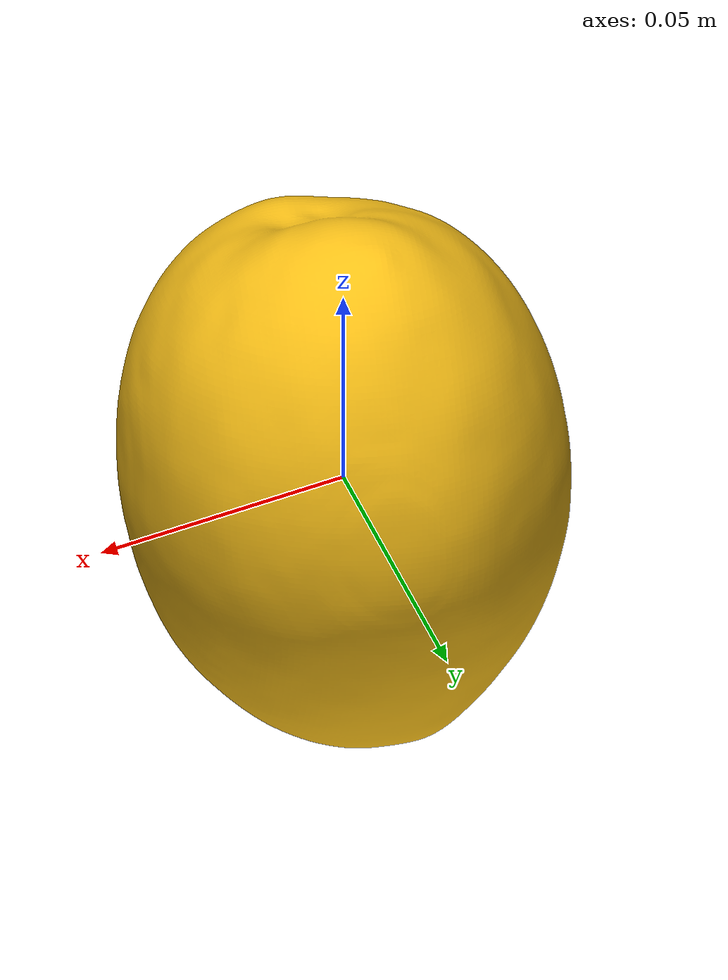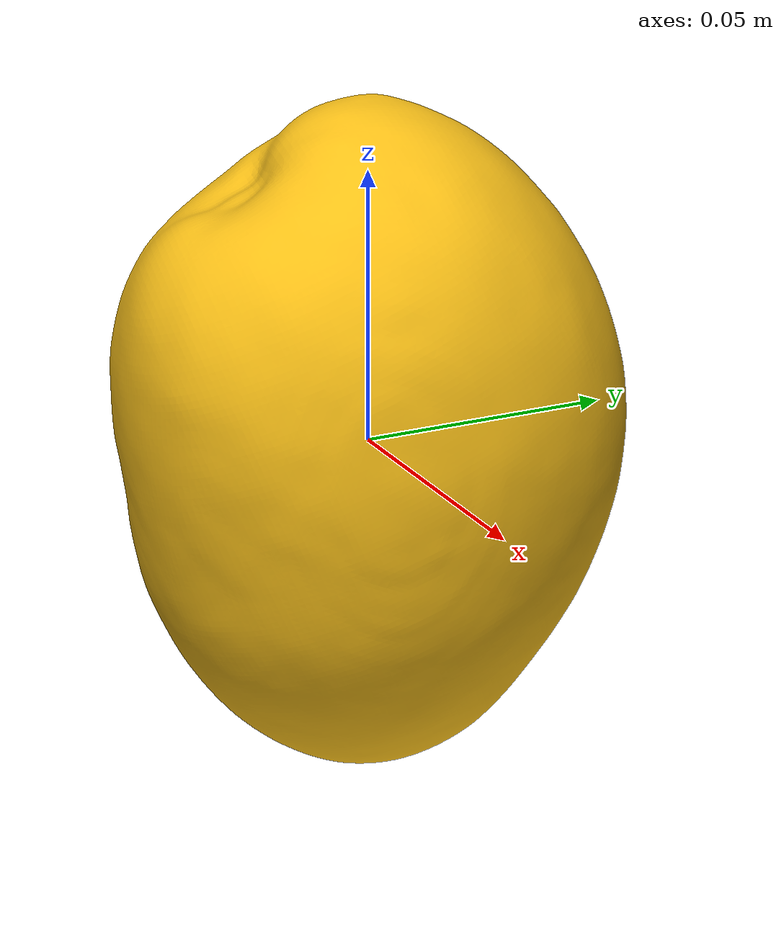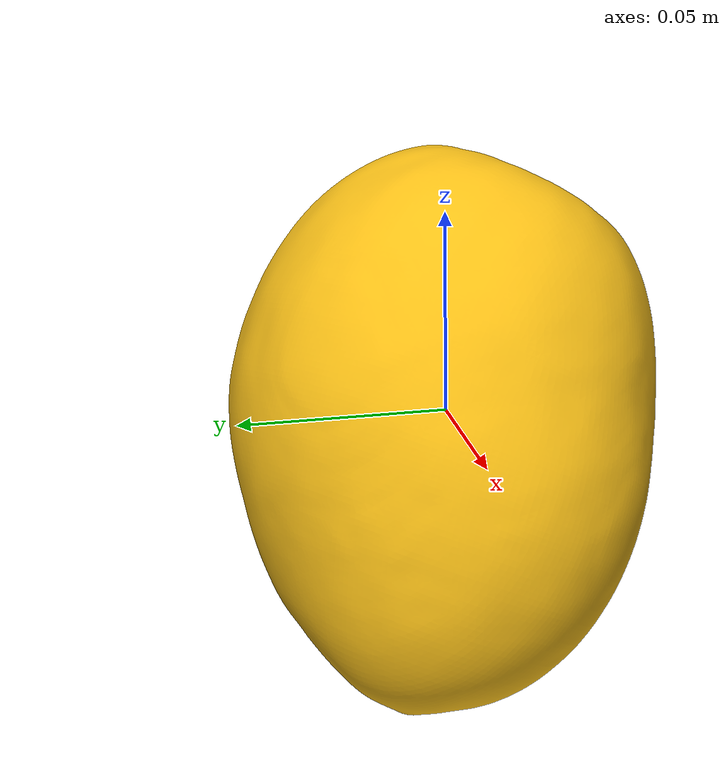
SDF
<sdf version="1.7">
  <model name="Mango">
    <link name="base_link">
      <inertial>
        <mass>0.2</mass>
        <inertia>
          <ixx>4.202e-04</ixx>
          <ixy>0.000e+00</ixy>
          <ixz>0.000e+00</ixz>
          <iyy>3.911e-04</iyy>
          <iyz>0.000e+00</iyz>
          <izz>2.714e-04</izz>
        </inertia>
      </inertial>
      <visual name="Mango_visual">
        <geometry>
          <mesh>
            <scale>1 1 1</scale>
            <uri>Mango_processed.obj</uri>
          </mesh>
        </geometry>
        <material>
          <diffuse>0.96 0.74 0.086 1.0</diffuse>
        </material>
      </visual>
      <collision name="Mango_collision">
        <geometry>
          <mesh>
            <scale>1 1 1</scale>
            <uri>Mango_processed.obj</uri>
          </mesh>
        </geometry>
      </collision>
    </link>
  </model>
</sdf>
